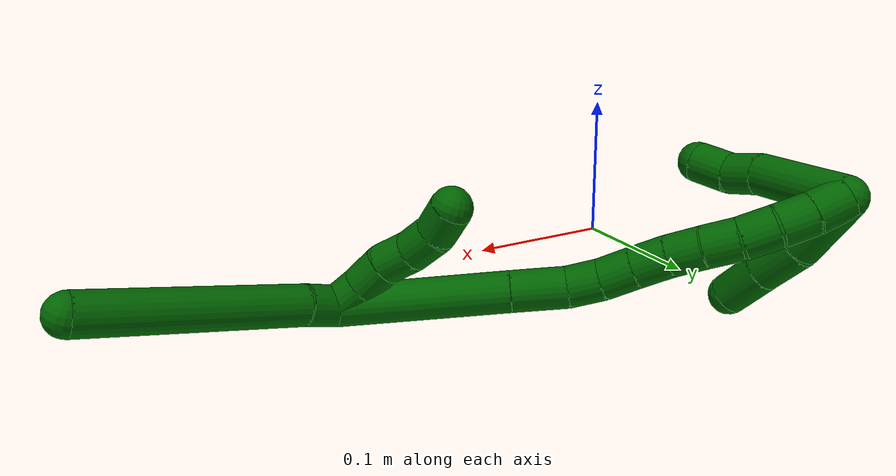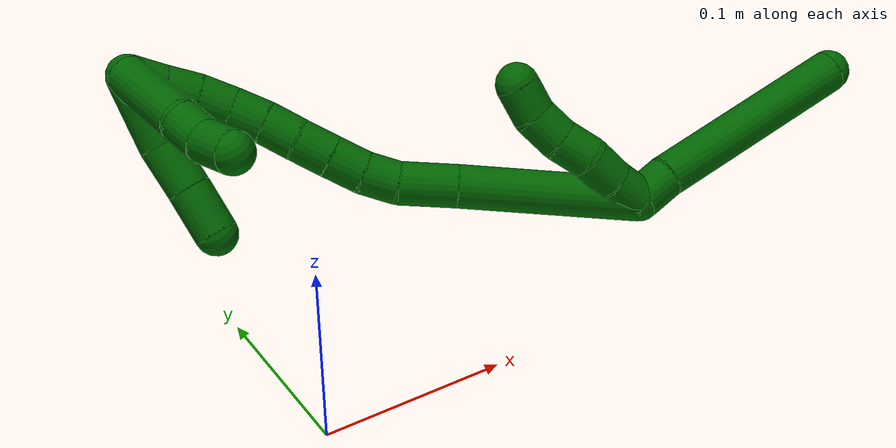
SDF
<sdf version="1.7">
 <world name="default">
  <model name="6">
   <static>0</static>
   <link name="6">
    <collision name="collision-cylinder-e_1_2_8">
     <pose>0.010531 -0.002901 -0.000115 1.61038 1.30176 1.34012</pose>
     <geometry><cylinder><radius>0.0125</radius><length>0.021849</length></cylinder></geometry>
     <surface>
      <friction><ode><mu>1.16</mu><mu2>1.16</mu2><slip1>0</slip1><slip2>0</slip2></ode></friction>
      <contact><ode><kp>1e+06</kp><kd>1</kd><max_vel>0</max_vel><min_depth>0.001</min_depth></ode></contact>
     </surface>
    </collision>
    <visual name="visual-cylinder-e_1_2_8">
     <pose>0.010531 -0.002901 -0.000115 1.61038 1.30176 1.34012</pose>
     <geometry><cylinder><radius>0.0125</radius><length>0.021849</length></cylinder></geometry>
     <material><ambient>0 0.392157 0.003922 1</ambient></material>
    </visual>
    <collision name="collision-cylinder-e_2_8_6">
     <pose>0.081345 -0.026316 -0.007373 1.90588 1.22496 1.55939</pose>
     <geometry><cylinder><radius>0.0125</radius><length>0.128151</length></cylinder></geometry>
     <surface>
      <friction><ode><mu>1.16</mu><mu2>1.16</mu2><slip1>0</slip1><slip2>0</slip2></ode></friction>
      <contact><ode><kp>1e+06</kp><kd>1</kd><max_vel>0</max_vel><min_depth>0.001</min_depth></ode></contact>
     </surface>
    </collision>
    <visual name="visual-cylinder-e_2_8_6">
     <pose>0.081345 -0.026316 -0.007373 1.90588 1.22496 1.55939</pose>
     <geometry><cylinder><radius>0.0125</radius><length>0.128151</length></cylinder></geometry>
     <material><ambient>0 0.392157 0.003922 1</ambient></material>
    </visual>
    <collision name="collision-cylinder-e_1_2_9">
     <pose>-0.002595 0.00419 0.008701 -0.448804 -0.262549 0.060254</pose>
     <geometry><cylinder><radius>0.0125</radius><length>0.02</length></cylinder></geometry>
     <surface>
      <friction><ode><mu>1.16</mu><mu2>1.16</mu2><slip1>0</slip1><slip2>0</slip2></ode></friction>
      <contact><ode><kp>1e+06</kp><kd>1</kd><max_vel>0</max_vel><min_depth>0.001</min_depth></ode></contact>
     </surface>
    </collision>
    <visual name="visual-cylinder-e_1_2_9">
     <pose>-0.002595 0.00419 0.008701 -0.448804 -0.262549 0.060254</pose>
     <geometry><cylinder><radius>0.0125</radius><length>0.02</length></cylinder></geometry>
     <material><ambient>0 0.392157 0.003922 1</ambient></material>
    </visual>
    <collision name="collision-cylinder-e_2_9_10">
     <pose>-0.006559 0.012381 0.026464 -0.415704 -0.137265 0.028992</pose>
     <geometry><cylinder><radius>0.0125</radius><length>0.02</length></cylinder></geometry>
     <surface>
      <friction><ode><mu>1.16</mu><mu2>1.16</mu2><slip1>0</slip1><slip2>0</slip2></ode></friction>
      <contact><ode><kp>1e+06</kp><kd>1</kd><max_vel>0</max_vel><min_depth>0.001</min_depth></ode></contact>
     </surface>
    </collision>
    <visual name="visual-cylinder-e_2_9_10">
     <pose>-0.006559 0.012381 0.026464 -0.415704 -0.137265 0.028992</pose>
     <geometry><cylinder><radius>0.0125</radius><length>0.02</length></cylinder></geometry>
     <material><ambient>0 0.392157 0.003922 1</ambient></material>
    </visual>
    <collision name="collision-cylinder-e_3_10_11">
     <pose>-0.009738 0.022788 0.042988 -0.709525 -0.182077 0.067609</pose>
     <geometry><cylinder><radius>0.0125</radius><length>0.02</length></cylinder></geometry>
     <surface>
      <friction><ode><mu>1.16</mu><mu2>1.16</mu2><slip1>0</slip1><slip2>0</slip2></ode></friction>
      <contact><ode><kp>1e+06</kp><kd>1</kd><max_vel>0</max_vel><min_depth>0.001</min_depth></ode></contact>
     </surface>
    </collision>
    <visual name="visual-cylinder-e_3_10_11">
     <pose>-0.009738 0.022788 0.042988 -0.709525 -0.182077 0.067609</pose>
     <geometry><cylinder><radius>0.0125</radius><length>0.02</length></cylinder></geometry>
     <material><ambient>0 0.392157 0.003922 1</ambient></material>
    </visual>
    <collision name="collision-cylinder-e_4_11_12">
     <pose>-0.01188 0.034658 0.058819 -0.578235 -0.033145 0.00986</pose>
     <geometry><cylinder><radius>0.0125</radius><length>0.02</length></cylinder></geometry>
     <surface>
      <friction><ode><mu>1.16</mu><mu2>1.16</mu2><slip1>0</slip1><slip2>0</slip2></ode></friction>
      <contact><ode><kp>1e+06</kp><kd>1</kd><max_vel>0</max_vel><min_depth>0.001</min_depth></ode></contact>
     </surface>
    </collision>
    <visual name="visual-cylinder-e_4_11_12">
     <pose>-0.01188 0.034658 0.058819 -0.578235 -0.033145 0.00986</pose>
     <geometry><cylinder><radius>0.0125</radius><length>0.02</length></cylinder></geometry>
     <material><ambient>0 0.392157 0.003922 1</ambient></material>
    </visual>
    <collision name="collision-cylinder-e_5_12_5">
     <pose>-0.010475 0.043386 0.076479 -0.337983 0.174544 -0.029854</pose>
     <geometry><cylinder><radius>0.0125</radius><length>0.02</length></cylinder></geometry>
     <surface>
      <friction><ode><mu>1.16</mu><mu2>1.16</mu2><slip1>0</slip1><slip2>0</slip2></ode></friction>
      <contact><ode><kp>1e+06</kp><kd>1</kd><max_vel>0</max_vel><min_depth>0.001</min_depth></ode></contact>
     </surface>
    </collision>
    <visual name="visual-cylinder-e_5_12_5">
     <pose>-0.010475 0.043386 0.076479 -0.337983 0.174544 -0.029854</pose>
     <geometry><cylinder><radius>0.0125</radius><length>0.02</length></cylinder></geometry>
     <material><ambient>0 0.392157 0.003922 1</ambient></material>
    </visual>
    <collision name="collision-cylinder-e_1_2_13">
     <pose>-0.027272 0.037944 0.022418 -1.03716 -0.554133 0.321774</pose>
     <geometry><cylinder><radius>0.0125</radius><length>0.103653</length></cylinder></geometry>
     <surface>
      <friction><ode><mu>1.16</mu><mu2>1.16</mu2><slip1>0</slip1><slip2>0</slip2></ode></friction>
      <contact><ode><kp>1e+06</kp><kd>1</kd><max_vel>0</max_vel><min_depth>0.001</min_depth></ode></contact>
     </surface>
    </collision>
    <visual name="visual-cylinder-e_1_2_13">
     <pose>-0.027272 0.037944 0.022418 -1.03716 -0.554133 0.321774</pose>
     <geometry><cylinder><radius>0.0125</radius><length>0.103653</length></cylinder></geometry>
     <material><ambient>0 0.392157 0.003922 1</ambient></material>
    </visual>
    <collision name="collision-cylinder-e_2_13_14">
     <pose>-0.063678 0.088089 0.0519 -1.04596 -0.574912 0.337647</pose>
     <geometry><cylinder><radius>0.0125</radius><length>0.0336</length></cylinder></geometry>
     <surface>
      <friction><ode><mu>1.16</mu><mu2>1.16</mu2><slip1>0</slip1><slip2>0</slip2></ode></friction>
      <contact><ode><kp>1e+06</kp><kd>1</kd><max_vel>0</max_vel><min_depth>0.001</min_depth></ode></contact>
     </surface>
    </collision>
    <visual name="visual-cylinder-e_2_13_14">
     <pose>-0.063678 0.088089 0.0519 -1.04596 -0.574912 0.337647</pose>
     <geometry><cylinder><radius>0.0125</radius><length>0.0336</length></cylinder></geometry>
     <material><ambient>0 0.392157 0.003922 1</ambient></material>
    </visual>
    <collision name="collision-cylinder-e_3_14_15">
     <pose>-0.076624 0.107626 0.065023 -0.880472 -0.381003 0.181184</pose>
     <geometry><cylinder><radius>0.0125</radius><length>0.020496</length></cylinder></geometry>
     <surface>
      <friction><ode><mu>1.16</mu><mu2>1.16</mu2><slip1>0</slip1><slip2>0</slip2></ode></friction>
      <contact><ode><kp>1e+06</kp><kd>1</kd><max_vel>0</max_vel><min_depth>0.001</min_depth></ode></contact>
     </surface>
    </collision>
    <visual name="visual-cylinder-e_3_14_15">
     <pose>-0.076624 0.107626 0.065023 -0.880472 -0.381003 0.181184</pose>
     <geometry><cylinder><radius>0.0125</radius><length>0.020496</length></cylinder></geometry>
     <material><ambient>0 0.392157 0.003922 1</ambient></material>
    </visual>
    <collision name="collision-cylinder-e_4_15_16">
     <pose>-0.08309 0.121837 0.078275 -0.762838 -0.260669 0.105043</pose>
     <geometry><cylinder><radius>0.0125</radius><length>0.0206</length></cylinder></geometry>
     <surface>
      <friction><ode><mu>1.16</mu><mu2>1.16</mu2><slip1>0</slip1><slip2>0</slip2></ode></friction>
      <contact><ode><kp>1e+06</kp><kd>1</kd><max_vel>0</max_vel><min_depth>0.001</min_depth></ode></contact>
     </surface>
    </collision>
    <visual name="visual-cylinder-e_4_15_16">
     <pose>-0.08309 0.121837 0.078275 -0.762838 -0.260669 0.105043</pose>
     <geometry><cylinder><radius>0.0125</radius><length>0.0206</length></cylinder></geometry>
     <material><ambient>0 0.392157 0.003922 1</ambient></material>
    </visual>
    <collision name="collision-cylinder-e_5_16_17">
     <pose>-0.088138 0.135841 0.092631 -0.782959 -0.23261 0.096379</pose>
     <geometry><cylinder><radius>0.0125</radius><length>0.020768</length></cylinder></geometry>
     <surface>
      <friction><ode><mu>1.16</mu><mu2>1.16</mu2><slip1>0</slip1><slip2>0</slip2></ode></friction>
      <contact><ode><kp>1e+06</kp><kd>1</kd><max_vel>0</max_vel><min_depth>0.001</min_depth></ode></contact>
     </surface>
    </collision>
    <visual name="visual-cylinder-e_5_16_17">
     <pose>-0.088138 0.135841 0.092631 -0.782959 -0.23261 0.096379</pose>
     <geometry><cylinder><radius>0.0125</radius><length>0.020768</length></cylinder></geometry>
     <material><ambient>0 0.392157 0.003922 1</ambient></material>
    </visual>
    <collision name="collision-cylinder-e_6_17_18">
     <pose>-0.092165 0.150528 0.106226 -0.865732 -0.163065 0.075483</pose>
     <geometry><cylinder><radius>0.0125</radius><length>0.020121</length></cylinder></geometry>
     <surface>
      <friction><ode><mu>1.16</mu><mu2>1.16</mu2><slip1>0</slip1><slip2>0</slip2></ode></friction>
      <contact><ode><kp>1e+06</kp><kd>1</kd><max_vel>0</max_vel><min_depth>0.001</min_depth></ode></contact>
     </surface>
    </collision>
    <visual name="visual-cylinder-e_6_17_18">
     <pose>-0.092165 0.150528 0.106226 -0.865732 -0.163065 0.075483</pose>
     <geometry><cylinder><radius>0.0125</radius><length>0.020121</length></cylinder></geometry>
     <material><ambient>0 0.392157 0.003922 1</ambient></material>
    </visual>
    <collision name="collision-cylinder-e_7_18_19">
     <pose>-0.096376 0.165724 0.118966 -0.880483 -0.254691 0.120485</pose>
     <geometry><cylinder><radius>0.0125</radius><length>0.020465</length></cylinder></geometry>
     <surface>
      <friction><ode><mu>1.16</mu><mu2>1.16</mu2><slip1>0</slip1><slip2>0</slip2></ode></friction>
      <contact><ode><kp>1e+06</kp><kd>1</kd><max_vel>0</max_vel><min_depth>0.001</min_depth></ode></contact>
     </surface>
    </collision>
    <visual name="visual-cylinder-e_7_18_19">
     <pose>-0.096376 0.165724 0.118966 -0.880483 -0.254691 0.120485</pose>
     <geometry><cylinder><radius>0.0125</radius><length>0.020465</length></cylinder></geometry>
     <material><ambient>0 0.392157 0.003922 1</ambient></material>
    </visual>
    <collision name="collision-cylinder-e_8_19_20">
     <pose>-0.102518 0.179877 0.132037 -0.766727 -0.362618 0.147606</pose>
     <geometry><cylinder><radius>0.0125</radius><length>0.020097</length></cylinder></geometry>
     <surface>
      <friction><ode><mu>1.16</mu><mu2>1.16</mu2><slip1>0</slip1><slip2>0</slip2></ode></friction>
      <contact><ode><kp>1e+06</kp><kd>1</kd><max_vel>0</max_vel><min_depth>0.001</min_depth></ode></contact>
     </surface>
    </collision>
    <visual name="visual-cylinder-e_8_19_20">
     <pose>-0.102518 0.179877 0.132037 -0.766727 -0.362618 0.147606</pose>
     <geometry><cylinder><radius>0.0125</radius><length>0.020097</length></cylinder></geometry>
     <material><ambient>0 0.392157 0.003922 1</ambient></material>
    </visual>
    <collision name="collision-cylinder-e_9_20_21">
     <pose>-0.111065 0.192223 0.145351 -0.727269 -0.516824 0.200505</pose>
     <geometry><cylinder><radius>0.0125</radius><length>0.020165</length></cylinder></geometry>
     <surface>
      <friction><ode><mu>1.16</mu><mu2>1.16</mu2><slip1>0</slip1><slip2>0</slip2></ode></friction>
      <contact><ode><kp>1e+06</kp><kd>1</kd><max_vel>0</max_vel><min_depth>0.001</min_depth></ode></contact>
     </surface>
    </collision>
    <visual name="visual-cylinder-e_9_20_21">
     <pose>-0.111065 0.192223 0.145351 -0.727269 -0.516824 0.200505</pose>
     <geometry><cylinder><radius>0.0125</radius><length>0.020165</length></cylinder></geometry>
     <material><ambient>0 0.392157 0.003922 1</ambient></material>
    </visual>
    <collision name="collision-cylinder-e_10_21_1">
     <pose>-0.121048 0.203022 0.159014 -0.60989 -0.522752 0.167999</pose>
     <geometry><cylinder><radius>0.0125</radius><length>0.020035</length></cylinder></geometry>
     <surface>
      <friction><ode><mu>1.16</mu><mu2>1.16</mu2><slip1>0</slip1><slip2>0</slip2></ode></friction>
      <contact><ode><kp>1e+06</kp><kd>1</kd><max_vel>0</max_vel><min_depth>0.001</min_depth></ode></contact>
     </surface>
    </collision>
    <visual name="visual-cylinder-e_10_21_1">
     <pose>-0.121048 0.203022 0.159014 -0.60989 -0.522752 0.167999</pose>
     <geometry><cylinder><radius>0.0125</radius><length>0.020035</length></cylinder></geometry>
     <material><ambient>0 0.392157 0.003922 1</ambient></material>
    </visual>
    <collision name="collision-cylinder-e_1_1_22">
     <pose>-0.13467 0.181396 0.161497 1.74321 -0.309062 -0.366334</pose>
     <geometry><cylinder><radius>0.0125</radius><length>0.05668</length></cylinder></geometry>
     <surface>
      <friction><ode><mu>1.16</mu><mu2>1.16</mu2><slip1>0</slip1><slip2>0</slip2></ode></friction>
      <contact><ode><kp>1e+06</kp><kd>1</kd><max_vel>0</max_vel><min_depth>0.001</min_depth></ode></contact>
     </surface>
    </collision>
    <visual name="visual-cylinder-e_1_1_22">
     <pose>-0.13467 0.181396 0.161497 1.74321 -0.309062 -0.366334</pose>
     <geometry><cylinder><radius>0.0125</radius><length>0.05668</length></cylinder></geometry>
     <material><ambient>0 0.392157 0.003922 1</ambient></material>
    </visual>
    <collision name="collision-cylinder-e_2_22_23">
     <pose>-0.145665 0.145631 0.153157 1.95521 -0.235711 -0.347705</pose>
     <geometry><cylinder><radius>0.0125</radius><length>0.020342</length></cylinder></geometry>
     <surface>
      <friction><ode><mu>1.16</mu><mu2>1.16</mu2><slip1>0</slip1><slip2>0</slip2></ode></friction>
      <contact><ode><kp>1e+06</kp><kd>1</kd><max_vel>0</max_vel><min_depth>0.001</min_depth></ode></contact>
     </surface>
    </collision>
    <visual name="visual-cylinder-e_2_22_23">
     <pose>-0.145665 0.145631 0.153157 1.95521 -0.235711 -0.347705</pose>
     <geometry><cylinder><radius>0.0125</radius><length>0.020342</length></cylinder></geometry>
     <material><ambient>0 0.392157 0.003922 1</ambient></material>
    </visual>
    <collision name="collision-cylinder-e_3_23_4">
     <pose>-0.149249 0.125088 0.148382 1.66423 -0.105406 -0.115723</pose>
     <geometry><cylinder><radius>0.0125</radius><length>0.022978</length></cylinder></geometry>
     <surface>
      <friction><ode><mu>1.16</mu><mu2>1.16</mu2><slip1>0</slip1><slip2>0</slip2></ode></friction>
      <contact><ode><kp>1e+06</kp><kd>1</kd><max_vel>0</max_vel><min_depth>0.001</min_depth></ode></contact>
     </surface>
    </collision>
    <visual name="visual-cylinder-e_3_23_4">
     <pose>-0.149249 0.125088 0.148382 1.66423 -0.105406 -0.115723</pose>
     <geometry><cylinder><radius>0.0125</radius><length>0.022978</length></cylinder></geometry>
     <material><ambient>0 0.392157 0.003922 1</ambient></material>
    </visual>
    <collision name="collision-cylinder-e_1_1_24">
     <pose>-0.132116 0.201059 0.147224 2.79001 -0.292617 -1.3851</pose>
     <geometry><cylinder><radius>0.0125</radius><length>0.042062</length></cylinder></geometry>
     <surface>
      <friction><ode><mu>1.16</mu><mu2>1.16</mu2><slip1>0</slip1><slip2>0</slip2></ode></friction>
      <contact><ode><kp>1e+06</kp><kd>1</kd><max_vel>0</max_vel><min_depth>0.001</min_depth></ode></contact>
     </surface>
    </collision>
    <visual name="visual-cylinder-e_1_1_24">
     <pose>-0.132116 0.201059 0.147224 2.79001 -0.292617 -1.3851</pose>
     <geometry><cylinder><radius>0.0125</radius><length>0.042062</length></cylinder></geometry>
     <material><ambient>0 0.392157 0.003922 1</ambient></material>
    </visual>
    <collision name="collision-cylinder-e_2_24_25">
     <pose>-0.14182 0.186696 0.116607 2.57637 -0.256451 -0.835725</pose>
     <geometry><cylinder><radius>0.0125</radius><length>0.028674</length></cylinder></geometry>
     <surface>
      <friction><ode><mu>1.16</mu><mu2>1.16</mu2><slip1>0</slip1><slip2>0</slip2></ode></friction>
      <contact><ode><kp>1e+06</kp><kd>1</kd><max_vel>0</max_vel><min_depth>0.001</min_depth></ode></contact>
     </surface>
    </collision>
    <visual name="visual-cylinder-e_2_24_25">
     <pose>-0.14182 0.186696 0.116607 2.57637 -0.256451 -0.835725</pose>
     <geometry><cylinder><radius>0.0125</radius><length>0.028674</length></cylinder></geometry>
     <material><ambient>0 0.392157 0.003922 1</ambient></material>
    </visual>
    <collision name="collision-cylinder-e_3_25_3">
     <pose>-0.149485 0.17196 0.092877 2.59526 -0.278929 -0.928953</pose>
     <geometry><cylinder><radius>0.0125</radius><length>0.029264</length></cylinder></geometry>
     <surface>
      <friction><ode><mu>1.16</mu><mu2>1.16</mu2><slip1>0</slip1><slip2>0</slip2></ode></friction>
      <contact><ode><kp>1e+06</kp><kd>1</kd><max_vel>0</max_vel><min_depth>0.001</min_depth></ode></contact>
     </surface>
    </collision>
    <visual name="visual-cylinder-e_3_25_3">
     <pose>-0.149485 0.17196 0.092877 2.59526 -0.278929 -0.928953</pose>
     <geometry><cylinder><radius>0.0125</radius><length>0.029264</length></cylinder></geometry>
     <material><ambient>0 0.392157 0.003922 1</ambient></material>
    </visual>
    <collision name="collision-sphere-3">
     <pose>-0.153513 0.164652 0.080858 0 -0 0</pose>
     <geometry><sphere><radius>0.0125</radius></sphere></geometry>
     <surface>
      <friction><ode><mu>1.16</mu><mu2>1.16</mu2><slip1>0</slip1><slip2>0</slip2></ode></friction>
      <contact><ode><kp>1e+06</kp><kd>1</kd><max_vel>0</max_vel><min_depth>0.001</min_depth></ode></contact>
     </surface>
    </collision>
    <visual name="visual-sphere-3">
     <pose>-0.153513 0.164652 0.080858 0 -0 0</pose>
     <geometry><sphere><radius>0.0125</radius></sphere></geometry>
     <material><ambient>0 0.392157 0.003922 1</ambient></material>
    </visual>
    <collision name="collision-sphere-25">
     <pose>-0.145456 0.179268 0.104896 0 -0 0</pose>
     <geometry><sphere><radius>0.0125</radius></sphere></geometry>
     <surface>
      <friction><ode><mu>1.16</mu><mu2>1.16</mu2><slip1>0</slip1><slip2>0</slip2></ode></friction>
      <contact><ode><kp>1e+06</kp><kd>1</kd><max_vel>0</max_vel><min_depth>0.001</min_depth></ode></contact>
     </surface>
    </collision>
    <visual name="visual-sphere-25">
     <pose>-0.145456 0.179268 0.104896 0 -0 0</pose>
     <geometry><sphere><radius>0.0125</radius></sphere></geometry>
     <material><ambient>0 0.392157 0.003922 1</ambient></material>
    </visual>
    <collision name="collision-sphere-24">
     <pose>-0.138183 0.194124 0.128318 0 -0 0</pose>
     <geometry><sphere><radius>0.0125</radius></sphere></geometry>
     <surface>
      <friction><ode><mu>1.16</mu><mu2>1.16</mu2><slip1>0</slip1><slip2>0</slip2></ode></friction>
      <contact><ode><kp>1e+06</kp><kd>1</kd><max_vel>0</max_vel><min_depth>0.001</min_depth></ode></contact>
     </surface>
    </collision>
    <visual name="visual-sphere-24">
     <pose>-0.138183 0.194124 0.128318 0 -0 0</pose>
     <geometry><sphere><radius>0.0125</radius></sphere></geometry>
     <material><ambient>0 0.392157 0.003922 1</ambient></material>
    </visual>
    <collision name="collision-sphere-4">
     <pose>-0.150458 0.113713 0.147316 0 -0 0</pose>
     <geometry><sphere><radius>0.0125</radius></sphere></geometry>
     <surface>
      <friction><ode><mu>1.16</mu><mu2>1.16</mu2><slip1>0</slip1><slip2>0</slip2></ode></friction>
      <contact><ode><kp>1e+06</kp><kd>1</kd><max_vel>0</max_vel><min_depth>0.001</min_depth></ode></contact>
     </surface>
    </collision>
    <visual name="visual-sphere-4">
     <pose>-0.150458 0.113713 0.147316 0 -0 0</pose>
     <geometry><sphere><radius>0.0125</radius></sphere></geometry>
     <material><ambient>0 0.392157 0.003922 1</ambient></material>
    </visual>
    <collision name="collision-sphere-23">
     <pose>-0.14804 0.136463 0.149448 0 -0 0</pose>
     <geometry><sphere><radius>0.0125</radius></sphere></geometry>
     <surface>
      <friction><ode><mu>1.16</mu><mu2>1.16</mu2><slip1>0</slip1><slip2>0</slip2></ode></friction>
      <contact><ode><kp>1e+06</kp><kd>1</kd><max_vel>0</max_vel><min_depth>0.001</min_depth></ode></contact>
     </surface>
    </collision>
    <visual name="visual-sphere-23">
     <pose>-0.14804 0.136463 0.149448 0 -0 0</pose>
     <geometry><sphere><radius>0.0125</radius></sphere></geometry>
     <material><ambient>0 0.392157 0.003922 1</ambient></material>
    </visual>
    <collision name="collision-sphere-22">
     <pose>-0.14329 0.154799 0.156866 0 -0 0</pose>
     <geometry><sphere><radius>0.0125</radius></sphere></geometry>
     <surface>
      <friction><ode><mu>1.16</mu><mu2>1.16</mu2><slip1>0</slip1><slip2>0</slip2></ode></friction>
      <contact><ode><kp>1e+06</kp><kd>1</kd><max_vel>0</max_vel><min_depth>0.001</min_depth></ode></contact>
     </surface>
    </collision>
    <visual name="visual-sphere-22">
     <pose>-0.14329 0.154799 0.156866 0 -0 0</pose>
     <geometry><sphere><radius>0.0125</radius></sphere></geometry>
     <material><ambient>0 0.392157 0.003922 1</ambient></material>
    </visual>
    <collision name="collision-sphere-1">
     <pose>-0.12605 0.207993 0.166129 0 -0 0</pose>
     <geometry><sphere><radius>0.0125</radius></sphere></geometry>
     <surface>
      <friction><ode><mu>1.16</mu><mu2>1.16</mu2><slip1>0</slip1><slip2>0</slip2></ode></friction>
      <contact><ode><kp>1e+06</kp><kd>1</kd><max_vel>0</max_vel><min_depth>0.001</min_depth></ode></contact>
     </surface>
    </collision>
    <visual name="visual-sphere-1">
     <pose>-0.12605 0.207993 0.166129 0 -0 0</pose>
     <geometry><sphere><radius>0.0125</radius></sphere></geometry>
     <material><ambient>0 0.392157 0.003922 1</ambient></material>
    </visual>
    <collision name="collision-sphere-21">
     <pose>-0.116047 0.19805 0.151899 0 -0 0</pose>
     <geometry><sphere><radius>0.0125</radius></sphere></geometry>
     <surface>
      <friction><ode><mu>1.16</mu><mu2>1.16</mu2><slip1>0</slip1><slip2>0</slip2></ode></friction>
      <contact><ode><kp>1e+06</kp><kd>1</kd><max_vel>0</max_vel><min_depth>0.001</min_depth></ode></contact>
     </surface>
    </collision>
    <visual name="visual-sphere-21">
     <pose>-0.116047 0.19805 0.151899 0 -0 0</pose>
     <geometry><sphere><radius>0.0125</radius></sphere></geometry>
     <material><ambient>0 0.392157 0.003922 1</ambient></material>
    </visual>
    <collision name="collision-sphere-11">
     <pose>-0.011549 0.029195 0.050449 0 -0 0</pose>
     <geometry><sphere><radius>0.0125</radius></sphere></geometry>
     <surface>
      <friction><ode><mu>1.16</mu><mu2>1.16</mu2><slip1>0</slip1><slip2>0</slip2></ode></friction>
      <contact><ode><kp>1e+06</kp><kd>1</kd><max_vel>0</max_vel><min_depth>0.001</min_depth></ode></contact>
     </surface>
    </collision>
    <visual name="visual-sphere-11">
     <pose>-0.011549 0.029195 0.050449 0 -0 0</pose>
     <geometry><sphere><radius>0.0125</radius></sphere></geometry>
     <material><ambient>0 0.392157 0.003922 1</ambient></material>
    </visual>
    <collision name="collision-sphere-10">
     <pose>-0.007928 0.016381 0.035526 0 -0 0</pose>
     <geometry><sphere><radius>0.0125</radius></sphere></geometry>
     <surface>
      <friction><ode><mu>1.16</mu><mu2>1.16</mu2><slip1>0</slip1><slip2>0</slip2></ode></friction>
      <contact><ode><kp>1e+06</kp><kd>1</kd><max_vel>0</max_vel><min_depth>0.001</min_depth></ode></contact>
     </surface>
    </collision>
    <visual name="visual-sphere-10">
     <pose>-0.007928 0.016381 0.035526 0 -0 0</pose>
     <geometry><sphere><radius>0.0125</radius></sphere></geometry>
     <material><ambient>0 0.392157 0.003922 1</ambient></material>
    </visual>
    <collision name="collision-sphere-6">
     <pose>0.141626 -0.046829 -0.014516 0 -0 0</pose>
     <geometry><sphere><radius>0.0125</radius></sphere></geometry>
     <surface>
      <friction><ode><mu>1.16</mu><mu2>1.16</mu2><slip1>0</slip1><slip2>0</slip2></ode></friction>
      <contact><ode><kp>1e+06</kp><kd>1</kd><max_vel>0</max_vel><min_depth>0.001</min_depth></ode></contact>
     </surface>
    </collision>
    <visual name="visual-sphere-6">
     <pose>0.141626 -0.046829 -0.014516 0 -0 0</pose>
     <geometry><sphere><radius>0.0125</radius></sphere></geometry>
     <material><ambient>0 0.392157 0.003922 1</ambient></material>
    </visual>
    <collision name="collision-sphere-9">
     <pose>-0.005191 0.00838 0.017402 0 -0 0</pose>
     <geometry><sphere><radius>0.0125</radius></sphere></geometry>
     <surface>
      <friction><ode><mu>1.16</mu><mu2>1.16</mu2><slip1>0</slip1><slip2>0</slip2></ode></friction>
      <contact><ode><kp>1e+06</kp><kd>1</kd><max_vel>0</max_vel><min_depth>0.001</min_depth></ode></contact>
     </surface>
    </collision>
    <visual name="visual-sphere-9">
     <pose>-0.005191 0.00838 0.017402 0 -0 0</pose>
     <geometry><sphere><radius>0.0125</radius></sphere></geometry>
     <material><ambient>0 0.392157 0.003922 1</ambient></material>
    </visual>
    <collision name="collision-sphere-2">
     <geometry><sphere><radius>0.0125</radius></sphere></geometry>
     <surface>
      <friction><ode><mu>1.16</mu><mu2>1.16</mu2><slip1>0</slip1><slip2>0</slip2></ode></friction>
      <contact><ode><kp>1e+06</kp><kd>1</kd><max_vel>0</max_vel><min_depth>0.001</min_depth></ode></contact>
     </surface>
    </collision>
    <visual name="visual-sphere-2">
     <geometry><sphere><radius>0.0125</radius></sphere></geometry>
     <material><ambient>0 0.392157 0.003922 1</ambient></material>
    </visual>
    <collision name="collision-sphere-19">
     <pose>-0.098954 0.173359 0.125271 0 -0 0</pose>
     <geometry><sphere><radius>0.0125</radius></sphere></geometry>
     <surface>
      <friction><ode><mu>1.16</mu><mu2>1.16</mu2><slip1>0</slip1><slip2>0</slip2></ode></friction>
      <contact><ode><kp>1e+06</kp><kd>1</kd><max_vel>0</max_vel><min_depth>0.001</min_depth></ode></contact>
     </surface>
    </collision>
    <visual name="visual-sphere-19">
     <pose>-0.098954 0.173359 0.125271 0 -0 0</pose>
     <geometry><sphere><radius>0.0125</radius></sphere></geometry>
     <material><ambient>0 0.392157 0.003922 1</ambient></material>
    </visual>
    <collision name="collision-sphere-8">
     <pose>0.021063 -0.005803 -0.00023 0 -0 0</pose>
     <geometry><sphere><radius>0.0125</radius></sphere></geometry>
     <surface>
      <friction><ode><mu>1.16</mu><mu2>1.16</mu2><slip1>0</slip1><slip2>0</slip2></ode></friction>
      <contact><ode><kp>1e+06</kp><kd>1</kd><max_vel>0</max_vel><min_depth>0.001</min_depth></ode></contact>
     </surface>
    </collision>
    <visual name="visual-sphere-8">
     <pose>0.021063 -0.005803 -0.00023 0 -0 0</pose>
     <geometry><sphere><radius>0.0125</radius></sphere></geometry>
     <material><ambient>0 0.392157 0.003922 1</ambient></material>
    </visual>
    <collision name="collision-sphere-12">
     <pose>-0.012212 0.04012 0.067188 0 -0 0</pose>
     <geometry><sphere><radius>0.0125</radius></sphere></geometry>
     <surface>
      <friction><ode><mu>1.16</mu><mu2>1.16</mu2><slip1>0</slip1><slip2>0</slip2></ode></friction>
      <contact><ode><kp>1e+06</kp><kd>1</kd><max_vel>0</max_vel><min_depth>0.001</min_depth></ode></contact>
     </surface>
    </collision>
    <visual name="visual-sphere-12">
     <pose>-0.012212 0.04012 0.067188 0 -0 0</pose>
     <geometry><sphere><radius>0.0125</radius></sphere></geometry>
     <material><ambient>0 0.392157 0.003922 1</ambient></material>
    </visual>
    <collision name="collision-sphere-5">
     <pose>-0.008739 0.046651 0.08577 0 -0 0</pose>
     <geometry><sphere><radius>0.0125</radius></sphere></geometry>
     <surface>
      <friction><ode><mu>1.16</mu><mu2>1.16</mu2><slip1>0</slip1><slip2>0</slip2></ode></friction>
      <contact><ode><kp>1e+06</kp><kd>1</kd><max_vel>0</max_vel><min_depth>0.001</min_depth></ode></contact>
     </surface>
    </collision>
    <visual name="visual-sphere-5">
     <pose>-0.008739 0.046651 0.08577 0 -0 0</pose>
     <geometry><sphere><radius>0.0125</radius></sphere></geometry>
     <material><ambient>0 0.392157 0.003922 1</ambient></material>
    </visual>
    <collision name="collision-sphere-13">
     <pose>-0.054543 0.075887 0.044835 0 -0 0</pose>
     <geometry><sphere><radius>0.0125</radius></sphere></geometry>
     <surface>
      <friction><ode><mu>1.16</mu><mu2>1.16</mu2><slip1>0</slip1><slip2>0</slip2></ode></friction>
      <contact><ode><kp>1e+06</kp><kd>1</kd><max_vel>0</max_vel><min_depth>0.001</min_depth></ode></contact>
     </surface>
    </collision>
    <visual name="visual-sphere-13">
     <pose>-0.054543 0.075887 0.044835 0 -0 0</pose>
     <geometry><sphere><radius>0.0125</radius></sphere></geometry>
     <material><ambient>0 0.392157 0.003922 1</ambient></material>
    </visual>
    <collision name="collision-sphere-14">
     <pose>-0.072814 0.10029 0.058965 0 -0 0</pose>
     <geometry><sphere><radius>0.0125</radius></sphere></geometry>
     <surface>
      <friction><ode><mu>1.16</mu><mu2>1.16</mu2><slip1>0</slip1><slip2>0</slip2></ode></friction>
      <contact><ode><kp>1e+06</kp><kd>1</kd><max_vel>0</max_vel><min_depth>0.001</min_depth></ode></contact>
     </surface>
    </collision>
    <visual name="visual-sphere-14">
     <pose>-0.072814 0.10029 0.058965 0 -0 0</pose>
     <geometry><sphere><radius>0.0125</radius></sphere></geometry>
     <material><ambient>0 0.392157 0.003922 1</ambient></material>
    </visual>
    <collision name="collision-sphere-15">
     <pose>-0.080435 0.114961 0.071081 0 -0 0</pose>
     <geometry><sphere><radius>0.0125</radius></sphere></geometry>
     <surface>
      <friction><ode><mu>1.16</mu><mu2>1.16</mu2><slip1>0</slip1><slip2>0</slip2></ode></friction>
      <contact><ode><kp>1e+06</kp><kd>1</kd><max_vel>0</max_vel><min_depth>0.001</min_depth></ode></contact>
     </surface>
    </collision>
    <visual name="visual-sphere-15">
     <pose>-0.080435 0.114961 0.071081 0 -0 0</pose>
     <geometry><sphere><radius>0.0125</radius></sphere></geometry>
     <material><ambient>0 0.392157 0.003922 1</ambient></material>
    </visual>
    <collision name="collision-sphere-16">
     <pose>-0.085744 0.128714 0.085469 0 -0 0</pose>
     <geometry><sphere><radius>0.0125</radius></sphere></geometry>
     <surface>
      <friction><ode><mu>1.16</mu><mu2>1.16</mu2><slip1>0</slip1><slip2>0</slip2></ode></friction>
      <contact><ode><kp>1e+06</kp><kd>1</kd><max_vel>0</max_vel><min_depth>0.001</min_depth></ode></contact>
     </surface>
    </collision>
    <visual name="visual-sphere-16">
     <pose>-0.085744 0.128714 0.085469 0 -0 0</pose>
     <geometry><sphere><radius>0.0125</radius></sphere></geometry>
     <material><ambient>0 0.392157 0.003922 1</ambient></material>
    </visual>
    <collision name="collision-sphere-17">
     <pose>-0.090531 0.142968 0.099793 0 -0 0</pose>
     <geometry><sphere><radius>0.0125</radius></sphere></geometry>
     <surface>
      <friction><ode><mu>1.16</mu><mu2>1.16</mu2><slip1>0</slip1><slip2>0</slip2></ode></friction>
      <contact><ode><kp>1e+06</kp><kd>1</kd><max_vel>0</max_vel><min_depth>0.001</min_depth></ode></contact>
     </surface>
    </collision>
    <visual name="visual-sphere-17">
     <pose>-0.090531 0.142968 0.099793 0 -0 0</pose>
     <geometry><sphere><radius>0.0125</radius></sphere></geometry>
     <material><ambient>0 0.392157 0.003922 1</ambient></material>
    </visual>
    <collision name="collision-sphere-18">
     <pose>-0.093798 0.158088 0.11266 0 -0 0</pose>
     <geometry><sphere><radius>0.0125</radius></sphere></geometry>
     <surface>
      <friction><ode><mu>1.16</mu><mu2>1.16</mu2><slip1>0</slip1><slip2>0</slip2></ode></friction>
      <contact><ode><kp>1e+06</kp><kd>1</kd><max_vel>0</max_vel><min_depth>0.001</min_depth></ode></contact>
     </surface>
    </collision>
    <visual name="visual-sphere-18">
     <pose>-0.093798 0.158088 0.11266 0 -0 0</pose>
     <geometry><sphere><radius>0.0125</radius></sphere></geometry>
     <material><ambient>0 0.392157 0.003922 1</ambient></material>
    </visual>
    <collision name="collision-sphere-20">
     <pose>-0.106083 0.186395 0.138804 0 -0 0</pose>
     <geometry><sphere><radius>0.0125</radius></sphere></geometry>
     <surface>
      <friction><ode><mu>1.16</mu><mu2>1.16</mu2><slip1>0</slip1><slip2>0</slip2></ode></friction>
      <contact><ode><kp>1e+06</kp><kd>1</kd><max_vel>0</max_vel><min_depth>0.001</min_depth></ode></contact>
     </surface>
    </collision>
    <visual name="visual-sphere-20">
     <pose>-0.106083 0.186395 0.138804 0 -0 0</pose>
     <geometry><sphere><radius>0.0125</radius></sphere></geometry>
     <material><ambient>0 0.392157 0.003922 1</ambient></material>
    </visual>
    <inertial>
     <pose>-0.051767 0.088376 0.071378 0 -0 0</pose>
     <mass>0.75</mass>
     <inertia>
      <ixx>0.000193</ixx>
      <ixy>0</ixy>
      <ixz>0</ixz>
      <iyy>0.000312</iyy>
      <iyz>0</iyz>
      <izz>-9.5e-05</izz>
     </inertia>
    </inertial>
   </link>
   <pose>0.238452 0.067046 0.012435 -0.25353 -0.242323 0.418498</pose>
  </model>
 </world>
</sdf>
